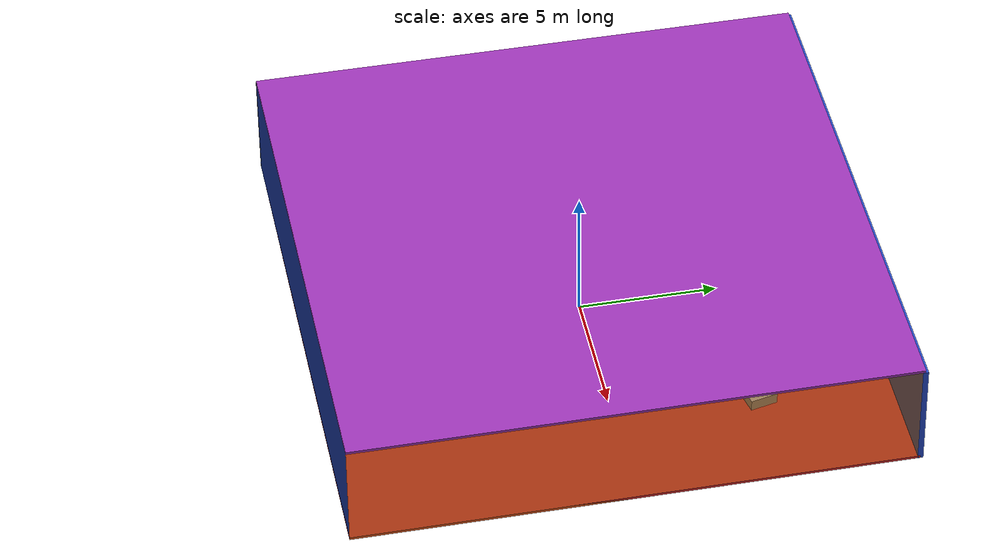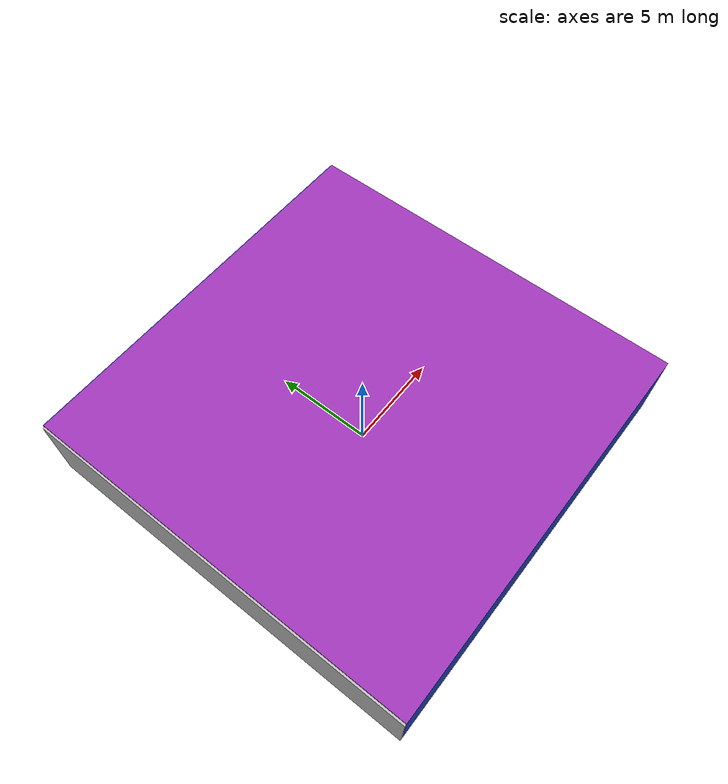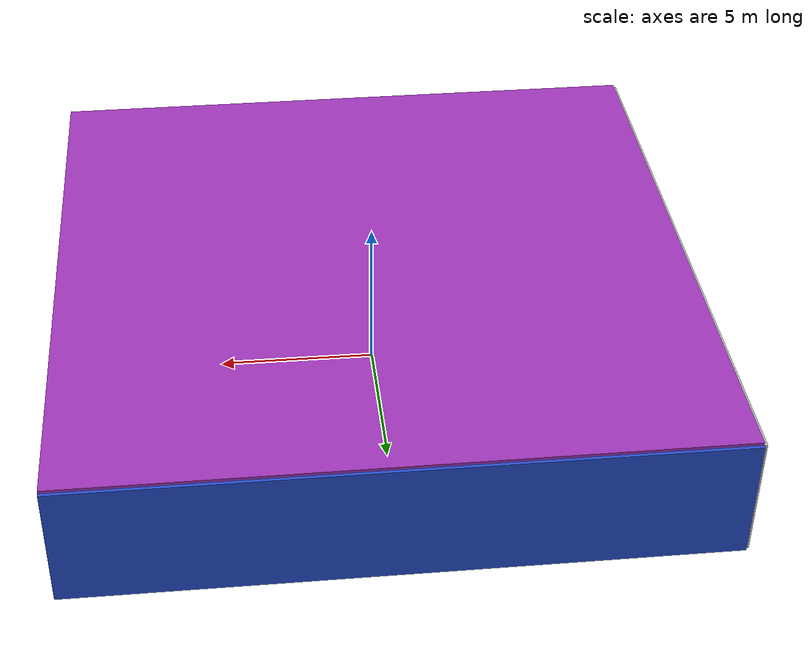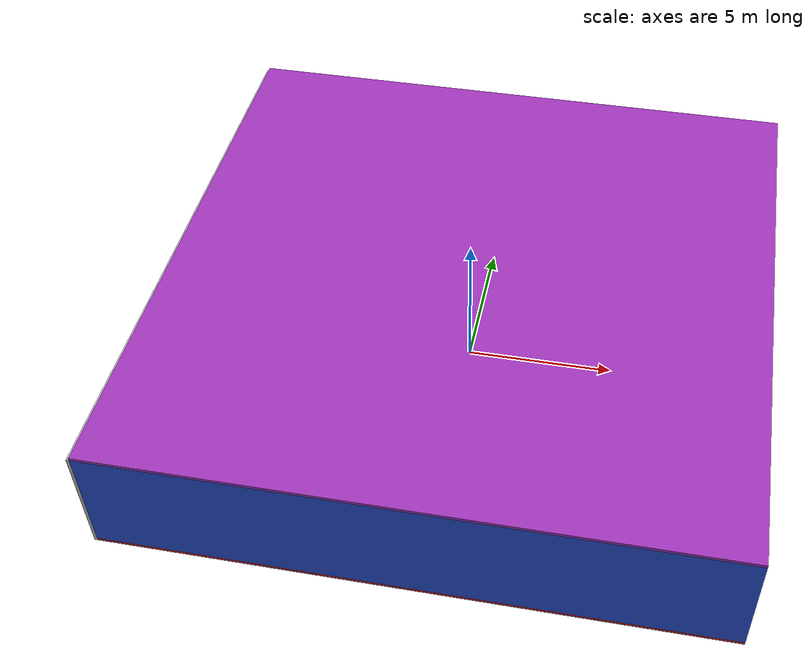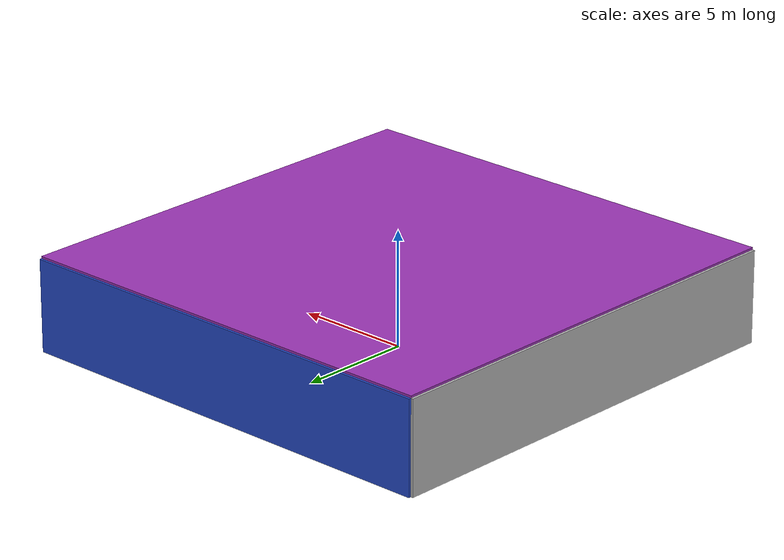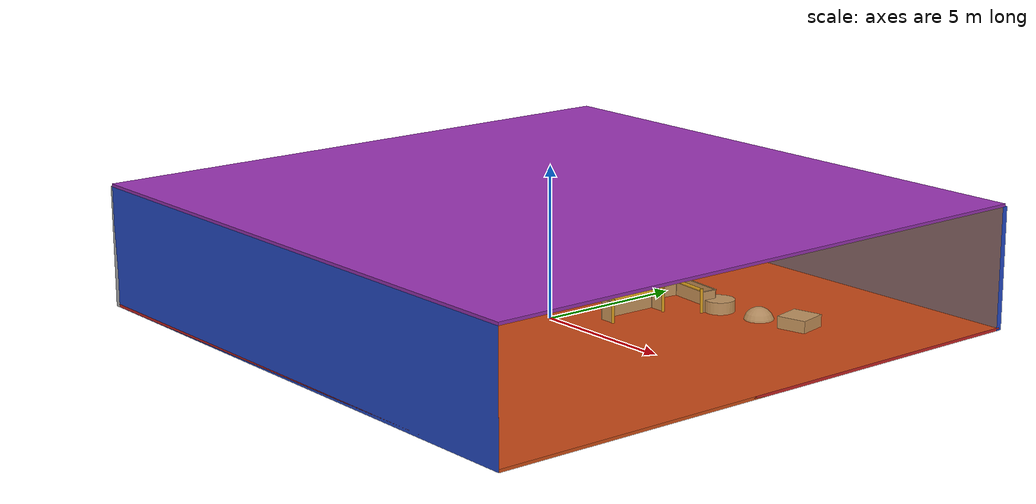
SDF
<sdf version="1.4">
 <world name="default">
  <physics type="ode">
   <max_step_size>0.001</max_step_size>
   <real_time_factor>1</real_time_factor>
   <real_time_update_rate>1000</real_time_update_rate>
   <gravity>0 0 -9.8</gravity>
  </physics>
  <scene><ambient>0.4 0.4 0.4 1</ambient><background>0.7 0.7 0.7 1</background><shadows>1</shadows></scene>
  <model name="Surrounding">
   <static>1</static>
   <link name="Ceiling">
    <collision name="Ceiling_Collision"><geometry><box><size>20 20 0.1</size></box></geometry></collision>
    <visual name="Ceiling_Visual">
     <geometry><box><size>20 20 0.1</size></box></geometry>
     <material>
      <script><uri>file://media/materials/scripts/gazebo.material</uri><name>Gazebo/PurpleGlow</name></script>
     </material>
    </visual>
    <pose>0 0 4.05 0 0 0</pose>
   </link>
   <link name="Wall_South">
    <collision name="Wall_South_Collision">
     <geometry><box><size>20 0 4</size></box></geometry>
     <pose>0 0 2 0 -0 0</pose>
    </collision>
    <visual name="Wall_South_Visual">
     <pose>0 0 2 0 -0 0</pose>
     <geometry><box><size>20 0 4</size></box></geometry>
     <material>
      <script><uri>file://media/materials/scripts/gazebo.material</uri><name>Gazebo/Blue</name></script>
     </material>
    </visual>
    <velocity_decay><linear>0</linear><angular>0</angular></velocity_decay>
    <pose>0 -10 0 0 -0 0</pose>
   </link>
   <link name="Wall_East">
    <collision name="Wall_21_Collision">
     <geometry><box><size>20 0 4</size></box></geometry>
     <pose>0 0 2 0 -0 0</pose>
    </collision>
    <visual name="Wall_21_Visual">
     <pose>0 0 2 0 -0 0</pose>
     <geometry><box><size>20 0 4</size></box></geometry>
     <material>
      <script>
       <uri>file://media/materials/scripts/gazebo.material</uri>
       <name>Gazebo/OrangeTransparent</name>
      </script>
     </material>
    </visual>
    <velocity_decay><linear>0</linear><angular>0</angular></velocity_decay>
    <pose>10 0 0 0 -0 1.5708</pose>
   </link>
   <link name="Wall_North">
    <collision name="Wall_22_Collision">
     <geometry><box><size>20 0.2 4</size></box></geometry>
     <pose>0 0 2 0 -0 0</pose>
    </collision>
    <visual name="Wall_22_Visual">
     <pose>0 0 2 0 -0 0</pose>
     <geometry><box><size>20 0.2 4</size></box></geometry>
     <material>
      <script><uri>file://media/materials/scripts/gazebo.material</uri><name>Gazebo/BlueGlow</name></script>
     </material>
    </visual>
    <velocity_decay><linear>0</linear><angular>0</angular></velocity_decay>
    <pose>0 10 0 0 -0 0</pose>
   </link>
   <link name="Wall_West">
    <collision name="Wall_23_Collision">
     <geometry><box><size>20 0.2 4</size></box></geometry>
     <pose>0 0 2 0 -0 0</pose>
    </collision>
    <visual name="Wall_23_Visual">
     <pose>0 0 2 0 -0 0</pose>
     <geometry><box><size>20 0.2 4</size></box></geometry>
     <material>
      <script><uri>file://media/materials/scripts/gazebo.material</uri><name>Gazebo/JointAnchor</name></script>
     </material>
    </visual>
    <velocity_decay><linear>0</linear><angular>0</angular></velocity_decay>
    <pose>-10 0 0 0 0 -1.5708</pose>
   </link>
   <link name="Ground_link">
    <collision name="collision">
     <pose>0 0 .05 0 -0 0</pose>
     <geometry><box><size>20 20 0.1</size></box></geometry>
    </collision>
    <visual name="visual">
     <pose>0 0 .05 0 -0 0</pose>
     <geometry><box><size>20 20 0.1</size></box></geometry>
     <material>
      <script><uri>file://media/materials/scripts/gazebo.material</uri><name>Gazebo/RedBright</name></script>
     </material>
    </visual>
   </link>
   <static>1</static>
  </model>
  <spherical_coordinates>
   <surface_model>EARTH_WGS84</surface_model>
   <latitude_deg>0</latitude_deg>
   <longitude_deg>0</longitude_deg>
   <elevation>0</elevation>
   <heading_deg>0</heading_deg>
  </spherical_coordinates>
  <light name="lightball_0" type="diffuse">
   <diffuse>0.8 0.8 0.8 1</diffuse>
   <specular>0.2 0.2 0.2 1</specular>
   <attenuation>
    <range>100</range>
    <constant>0.7</constant>
    <linear>0.01</linear>
    <quadratic>0.001</quadratic>
   </attenuation>
   <direction>-0.5 0.1 -0.9</direction>
   <pose>-9.21545743725 6.58646262859 2.09555637044 0 0 0</pose>
  </light>
  <include>
   <uri>model://textured_shapes</uri>
   <pose>-8.02337580088 -4.74524576225 0 0 0 3.118344719</pose>
  </include>
  <include>
   <uri>model://textured_shapes</uri>
   <pose>-4.07755509416 -6.74357826404 0 0 0 0.23296344132</pose>
  </include>
  <include><uri>model://table</uri><pose>-1.90212255718 -4.23674734287 0 0 0 1.46967473735</pose></include>
  <include>
   <uri>model://robocup_3Dsim_goal</uri>
   <pose>1.86777829799 -7.16251219002 0 0 0 3.0491227356</pose>
  </include>
  <include>
   <uri>model://robocup_3Dsim_goal</uri>
   <pose>1.94536677272 2.01188010185 0 0 0 3.12251446628</pose>
  </include>
  <include>
   <uri>model://robocup_3Dsim_goal</uri>
   <pose>1.81908329018 4.01914518408 0 0 0 1.46954800002</pose>
  </include>
  <include>
   <uri>model://textured_shapes</uri>
   <pose>4.53821972716 4.83982236475 0 0 0 1.79352615308</pose>
  </include>
 </world>
</sdf>

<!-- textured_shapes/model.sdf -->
<sdf version="1.6">
  <model name="textured_shapes">
    <pose>0 0 0.5 0 0 0</pose>
    <link name="box">
      <pose>0 -1.5 0 0 0 0</pose>
      <collision name="collision">
        <geometry>
          <box>
            <size>1 1 1</size>
          </box>
        </geometry>
      </collision>
      <visual name="visual">
        <geometry>
          <box>
            <size>1 1 1</size>
          </box>
        </geometry>
        <material>
          <script>
            <uri>model://../model_source/models/textured_shapes/materials/scripts</uri>
            <uri>model://../model_source/models/textured_shapes/materials/textures</uri>
            <name>TexturedShape/Squares</name>
          </script>
        </material>
      </visual>
    </link>
    <link name="sphere">
      <collision name="collision">
        <geometry>
          <sphere>
            <radius>0.5</radius>
          </sphere>
        </geometry>
      </collision>
      <visual name="visual">
        <geometry>
          <sphere>
            <radius>0.5</radius>
          </sphere>
        </geometry>
        <material>
          <script>
            <uri>model://../model_source/models/textured_shapes/materials/scripts</uri>
            <uri>model://../model_source/models/textured_shapes/materials/textures</uri>
            <name>TexturedShape/Squares</name>
          </script>
        </material>
      </visual>
    </link>
    <link name="cylinder">
      <pose>0 1.5 0 0 0 0</pose>
      <collision name="collision">
        <geometry>
          <cylinder>
            <radius>0.5</radius>
            <length>1</length>
          </cylinder>
        </geometry>
      </collision>
      <visual name="visual">
        <geometry>
          <cylinder>
            <radius>0.5</radius>
            <length>1</length>
          </cylinder>
        </geometry>
        <material>
          <script>
            <uri>model://../model_source/models/textured_shapes/materials/scripts</uri>
            <uri>model://../model_source/models/textured_shapes/materials/textures</uri>
            <name>TexturedShape/Squares</name>
          </script>
        </material>
      </visual>
    </link>
  </model>
</sdf>

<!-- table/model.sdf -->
<sdf version="1.5">
  <model name="table">
    <static>true</static>
    <link name="link">
      <collision name="surface">
        <pose>0 0 1.0 0 0 0</pose>
        <geometry>
          <box>
            <size>1.5 0.8 0.03</size>
          </box>
        </geometry>
        <surface>
          <friction>
            <ode>
              <mu>0.6</mu>
              <mu2>0.6</mu2>
            </ode>
          </friction>
        </surface>
      </collision>
      <visual name="visual1">
        <pose>0 0 1.0 0 0 0</pose>
        <geometry>
          <box>
            <size>1.5 0.8 0.03</size>
          </box>
        </geometry>
        <material>
          <script>
            <uri>model://media/materials/scripts/gazebo.material</uri>
            <name>Gazebo/Wood</name>
          </script>
        </material>
      </visual>
      <collision name="front_left_leg">
        <pose>0.68 0.38 0.5 0 0 0</pose>
        <geometry>
          <cylinder>
            <radius>0.02</radius>
            <length>1.0</length>
          </cylinder>
        </geometry>
      </collision>
      <visual name="front_left_leg">
        <pose>0.68 0.38 0.5 0 0 0</pose>
        <geometry>
          <cylinder>
            <radius>0.02</radius>
            <length>1.0</length>
          </cylinder>
        </geometry>
        <material>
          <script>
            <uri>model://media/materials/scripts/gazebo.material</uri>
            <name>Gazebo/Grey</name>
          </script>
        </material>
      </visual>
      <collision name="front_right_leg">
        <pose>0.68 -0.38 0.5 0 0 0</pose>
        <geometry>
          <cylinder>
            <radius>0.02</radius>
            <length>1.0</length>
          </cylinder>
        </geometry>
      </collision>
      <visual name="front_right_leg">
        <pose>0.68 -0.38 0.5 0 0 0</pose>
        <geometry>
          <cylinder>
            <radius>0.02</radius>
            <length>1.0</length>
          </cylinder>
        </geometry>
        <material>
          <script>
            <uri>model://media/materials/scripts/gazebo.material</uri>
            <name>Gazebo/Grey</name>
          </script>
        </material>
      </visual>
      <collision name="back_right_leg">
        <pose>-0.68 -0.38 0.5 0 0 0</pose>
        <geometry>
          <cylinder>
            <radius>0.02</radius>
            <length>1.0</length>
          </cylinder>
        </geometry>
      </collision>
      <visual name="back_right_leg">
        <pose>-0.68 -0.38 0.5 0 0 0</pose>
        <geometry>
          <cylinder>
            <radius>0.02</radius>
            <length>1.0</length>
          </cylinder>
        </geometry>
        <material>
          <script>
            <uri>model://media/materials/scripts/gazebo.material</uri>
            <name>Gazebo/Grey</name>
          </script>
        </material>
      </visual>
      <collision name="back_left_leg">
        <pose>-0.68 0.38 0.5 0 0 0</pose>
        <geometry>
          <cylinder>
            <radius>0.02</radius>
            <length>1.0</length>
          </cylinder>
        </geometry>
      </collision>
      <visual name="back_left_leg">
        <pose>-0.68 0.38 0.5 0 0 0</pose>
        <geometry>
          <cylinder>
            <radius>0.02</radius>
            <length>1.0</length>
          </cylinder>
        </geometry>
        <material>
          <script>
            <uri>model://media/materials/scripts/gazebo.material</uri>
            <name>Gazebo/Grey</name>
          </script>
        </material>
      </visual>
    </link>
  </model>
</sdf>

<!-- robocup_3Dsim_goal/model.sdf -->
<sdf version="1.5">
  <model name="robocup_3d_goal">
    <static>true</static>
    <link name="left_post">
      <pose>0 1.05 0.45 0 0 0</pose>
      <collision name="collision">
        <geometry>
          <cylinder>
            <radius>0.05</radius>
            <length>0.9</length>
          </cylinder>
        </geometry>
      </collision>
      <visual name="visual">
        <geometry>
          <cylinder>
            <radius>0.05</radius>
            <length>0.9</length>
          </cylinder>
        </geometry>
        <material>
          <script>
            <uri>file://media/materials/scripts/gazebo.material</uri>
            <name>Gazebo/ZincYellow</name>
          </script>
        </material>
      </visual>
    </link>
    <link name="left_support_horiz_lower">
      <pose>0.30 1.05 0.01 0 0 0</pose>
      <collision name="collision">
        <geometry>
          <box>
            <size>0.50 0.02 0.02</size>
          </box>
        </geometry>
      </collision>
      <visual name="visual">
        <geometry>
          <box>
            <size>0.50 0.02 0.02</size>
          </box>
        </geometry>
        <material>
          <script>
            <uri>file://media/materials/scripts/gazebo.material</uri>
            <name>Gazebo/White</name>
          </script>
        </material>
      </visual>
    </link>
    <link name="left_support_horiz_upper">
      <pose>0.30 1.05 0.79 0 0 0</pose>
      <collision name="collision">
        <geometry>
          <box>
            <size>0.50 0.02 0.02</size>
          </box>
        </geometry>
      </collision>
      <visual name="visual">
        <geometry>
          <box>
            <size>0.50 0.02 0.02</size>
          </box>
        </geometry>
        <material>
          <script>
            <uri>file://media/materials/scripts/gazebo.material</uri>
            <name>Gazebo/White</name>
          </script>
        </material>
      </visual>
    </link>
    <link name="left_support_vertical">
      <pose>0.56 1.05 0.4 0 1.5708 0</pose>
      <collision name="collision">
        <geometry>
          <box>
            <size>0.80 0.02 0.02</size>
          </box>
        </geometry>
      </collision>
      <visual name="visual">
        <geometry>
          <box>
            <size>0.80 0.02 0.02</size>
          </box>
        </geometry>
        <material>
          <script>
            <uri>file://media/materials/scripts/gazebo.material</uri>
            <name>Gazebo/White</name>
          </script>
        </material>
      </visual>
    </link>
    <link name="right_support_horiz_lower">
      <pose>0.30 -1.05 0.01 0 0 0</pose>
      <collision name="collision">
        <geometry>
          <box>
            <size>0.50 0.02 0.02</size>
          </box>
        </geometry>
      </collision>
      <visual name="visual">
        <geometry>
          <box>
            <size>0.50 0.02 0.02</size>
          </box>
        </geometry>
        <material>
          <script>
            <uri>file://media/materials/scripts/gazebo.material</uri>
            <name>Gazebo/White</name>
          </script>
        </material>
      </visual>
    </link>
    <link name="right_support_horiz_upper">
      <pose>0.30 -1.05 0.79 0 0 0</pose>
      <collision name="collision">
        <geometry>
          <box>
            <size>0.50 0.02 0.02</size>
          </box>
        </geometry>
      </collision>
      <visual name="visual">
        <geometry>
          <box>
            <size>0.50 0.02 0.02</size>
          </box>
        </geometry>
        <material>
          <script>
            <uri>file://media/materials/scripts/gazebo.material</uri>
            <name>Gazebo/White</name>
          </script>
        </material>
      </visual>
    </link>
    <link name="right_support_vertical">
      <pose>0.56 -1.05 0.4 0 1.5708 0</pose>
      <collision name="collision">
        <geometry>
          <box>
            <size>0.80 0.02 0.02</size>
          </box>
        </geometry>
      </collision>
      <visual name="visual">
        <geometry>
          <box>
            <size>0.80 0.02 0.02</size>
          </box>
        </geometry>
        <material>
          <script>
            <uri>file://media/materials/scripts/gazebo.material</uri>
            <name>Gazebo/White</name>
          </script>
        </material>
      </visual>
    </link>
    <link name="center_support_horiz_lower">
      <pose>0.56 0 0.01 0 1.5708 0</pose>
      <collision name="collision">
        <geometry>
          <box>
            <size>0.02 2.08 0.02</size>
          </box>
        </geometry>
      </collision>
      <visual name="visual">
        <geometry>
          <box>
            <size>0.02 2.08 0.02</size>
          </box>
        </geometry>
        <material>
          <script>
            <uri>file://media/materials/scripts/gazebo.material</uri>
            <name>Gazebo/White</name>
          </script>
        </material>
      </visual>
    </link>
    <link name="center_support_horiz_upper">
      <pose>0.56 0 0.79 0 1.5708 0</pose>
      <collision name="collision">
        <geometry>
          <box>
            <size>0.02 2.08 0.02</size>
          </box>
        </geometry>
      </collision>
      <visual name="visual">
        <geometry>
          <box>
            <size>0.02 2.08 0.02</size>
          </box>
        </geometry>
        <material>
          <script>
            <uri>file://media/materials/scripts/gazebo.material</uri>
            <name>Gazebo/White</name>
          </script>
        </material>
      </visual>
    </link>
    <link name="right_post">
      <pose>0 -1.05 0.45 0 0 0</pose>
      <collision name="collision">
        <geometry>
          <cylinder>
            <radius>0.05</radius>
            <length>0.9</length>
          </cylinder>
        </geometry>
      </collision>
      <visual name="visual">
        <geometry>
          <cylinder>
            <radius>0.05</radius>
            <length>0.9</length>
          </cylinder>
        </geometry>
        <material>
          <script>
            <uri>file://media/materials/scripts/gazebo.material</uri>
            <name>Gazebo/ZincYellow</name>
          </script>
        </material>
      </visual>
    </link>
    <link name="crossbar">
      <pose>0 0 0.85 1.57 1.57 0</pose>
      <collision name="collision">
        <geometry>
          <cylinder>
            <radius>0.05</radius>
            <length>2.0</length>
          </cylinder>
        </geometry>
      </collision>
      <visual name="visual">
        <geometry>
          <cylinder>
            <radius>0.05</radius>
            <length>2.0</length>
          </cylinder>
        </geometry>
        <material>
          <script>
            <uri>file://media/materials/scripts/gazebo.material</uri>
            <name>Gazebo/ZincYellow</name>
          </script>
        </material>
      </visual>
    </link>
    <link name="center_net">
      <pose>0.56 0 0.40 0 0 0</pose>
      <collision name="collision">
        <geometry>
          <box>
            <size>0.01 2.1 0.80</size>
          </box>
        </geometry>
      </collision>
      <visual name="visual">
        <geometry>
          <box>
            <size>0.01 2.1 0.80</size>
          </box>
        </geometry>
        <material>
          <script>
            <uri>model://../model_source/models/robocup09_spl_field/materials/scripts/</uri>
            <uri>model://../model_source/models/robocup09_spl_field/materials/textures/</uri>
            <name>RoboCup/Net</name>
          </script>
        </material>
      </visual>
    </link>
    <link name="left_net">
      <pose>0.30 1.05 0.40 0 0 0</pose>
      <collision name="collision">
        <geometry>
          <box>
            <size>0.50 0.01 0.76</size>
          </box>
        </geometry>
      </collision>
      <visual name="visual">
        <geometry>
          <box>
            <size>0.50 0.01 0.76</size>
          </box>
        </geometry>
        <material>
          <script>
            <uri>model://../model_source/models/robocup09_spl_field/materials/scripts/</uri>
            <uri>model://../model_source/models/robocup09_spl_field/materials/textures/</uri>
            <name>RoboCup/Net</name>
          </script>
        </material>
      </visual>
    </link>
    <link name="right_net">
      <pose>0.30 -1.05 0.40 0 0 0</pose>
      <collision name="collision">
        <geometry>
          <box>
            <size>0.50 0.01 0.76</size>
          </box>
        </geometry>
      </collision>
      <visual name="visual">
        <geometry>
          <box>
            <size>0.50 0.01 0.76</size>
          </box>
        </geometry>
        <material>
          <script>
            <uri>model://../model_source/models/robocup09_spl_field/materials/scripts/</uri>
            <uri>model://../model_source/models/robocup09_spl_field/materials/textures/</uri>
            <name>RoboCup/Net</name>
          </script>
        </material>
      </visual>
    </link>
  </model>
</sdf>
